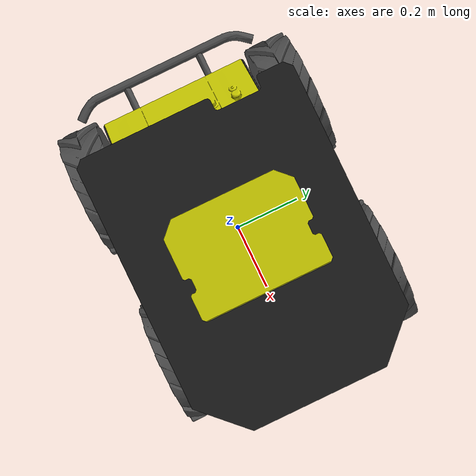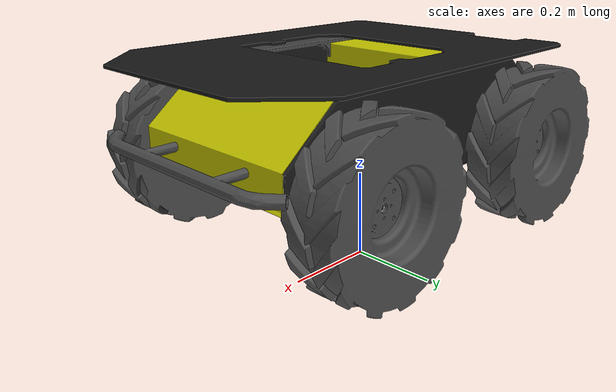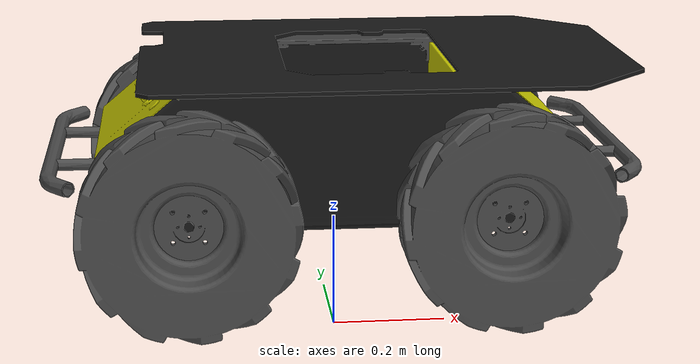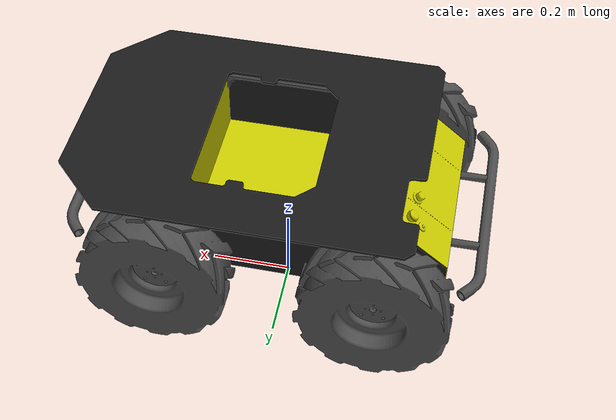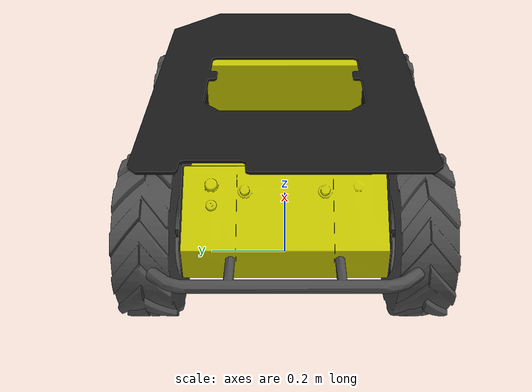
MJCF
<mujoco model="husky_robot_lidar">
  <compiler angle="radian" meshdir="./meshes/" autolimits="true"/>
  <default>
    <joint limited="false" armature="0.01" />
    <equality solref="0.0002 1" solimp="0.99 0.99 0.0001" />
  </default>
  <asset>
    <mesh name="base_link" file="base_link.stl"/>
    <mesh name="wheel" file="wheel.stl"/>
    <mesh name="top_plate" file="top_plate.stl"/>
    <mesh name="user_rail" file="user_rail.stl"/>
    <mesh name="bumper" file="bumper.stl"/>
    <mesh name="large_top_plate" file="large_top_plate.obj"/>
  </asset>
  <worldbody>
    <body name="base_husky" pos="0 0 0.1" euler="0 0 0">
      <inertial pos="0 0 0" quat="0.5 0.5 -0.5 0.5" mass="100" diaginertia="0.04411 0.02467 0.02467"/>
      <joint type="free" name="base_husky_joint" />
      <geom pos="0 0 0.14493" type="mesh" contype="0" conaffinity="1" group="1" density="0" rgba="0.1 0.1 0.1 1" mesh="base_link"/>
      <geom pos="0 0 0.14493" type="mesh" contype="0" conaffinity="1" group="1" density="0" rgba="0.8 0.8 0 1" mesh="top_plate"/>
      <geom pos="0.272 0 0.38993" type="mesh" contype="0" conaffinity="1" group="1" density="0" rgba="0.3 0.3 0.3 1" mesh="user_rail"/>
      <geom pos="0.48 0 0.23593" type="mesh" contype="0" conaffinity="1" group="1" density="0" rgba="0.3 0.3 0.3 1" mesh="bumper"/>
      <geom pos="-0.48 0 0.23593" quat="1.32679e-06 0 0 1" type="mesh" contype="0" conaffinity="1" group="1" density="0" rgba="0.3 0.3 0.3 1" mesh="bumper"/>
      <geom pos="0.08 0 0.38993" type="mesh" contype="0" conaffinity="1" group="1" density="0" rgba="0.1 0.1 0.1 1" mesh="large_top_plate"/>
      <!-- 2D LiDAR: 72 rangefinder rays at 5-degree intervals -->
      <site name="lidar_000" pos="0 0 0.55" zaxis="1.000000 0.000000 0" size="0.001" rgba="0 0 0 0" group="4"/>
      <site name="lidar_001" pos="0 0 0.55" zaxis="0.996195 0.087156 0" size="0.001" rgba="0 0 0 0" group="4"/>
      <site name="lidar_002" pos="0 0 0.55" zaxis="0.984808 0.173648 0" size="0.001" rgba="0 0 0 0" group="4"/>
      <site name="lidar_003" pos="0 0 0.55" zaxis="0.965926 0.258819 0" size="0.001" rgba="0 0 0 0" group="4"/>
      <site name="lidar_004" pos="0 0 0.55" zaxis="0.939693 0.342020 0" size="0.001" rgba="0 0 0 0" group="4"/>
      <site name="lidar_005" pos="0 0 0.55" zaxis="0.906308 0.422618 0" size="0.001" rgba="0 0 0 0" group="4"/>
      <site name="lidar_006" pos="0 0 0.55" zaxis="0.866025 0.500000 0" size="0.001" rgba="0 0 0 0" group="4"/>
      <site name="lidar_007" pos="0 0 0.55" zaxis="0.819152 0.573576 0" size="0.001" rgba="0 0 0 0" group="4"/>
      <site name="lidar_008" pos="0 0 0.55" zaxis="0.766044 0.642788 0" size="0.001" rgba="0 0 0 0" group="4"/>
      <site name="lidar_009" pos="0 0 0.55" zaxis="0.707107 0.707107 0" size="0.001" rgba="0 0 0 0" group="4"/>
      <site name="lidar_010" pos="0 0 0.55" zaxis="0.642788 0.766044 0" size="0.001" rgba="0 0 0 0" group="4"/>
      <site name="lidar_011" pos="0 0 0.55" zaxis="0.573576 0.819152 0" size="0.001" rgba="0 0 0 0" group="4"/>
      <site name="lidar_012" pos="0 0 0.55" zaxis="0.500000 0.866025 0" size="0.001" rgba="0 0 0 0" group="4"/>
      <site name="lidar_013" pos="0 0 0.55" zaxis="0.422618 0.906308 0" size="0.001" rgba="0 0 0 0" group="4"/>
      <site name="lidar_014" pos="0 0 0.55" zaxis="0.342020 0.939693 0" size="0.001" rgba="0 0 0 0" group="4"/>
      <site name="lidar_015" pos="0 0 0.55" zaxis="0.258819 0.965926 0" size="0.001" rgba="0 0 0 0" group="4"/>
      <site name="lidar_016" pos="0 0 0.55" zaxis="0.173648 0.984808 0" size="0.001" rgba="0 0 0 0" group="4"/>
      <site name="lidar_017" pos="0 0 0.55" zaxis="0.087156 0.996195 0" size="0.001" rgba="0 0 0 0" group="4"/>
      <site name="lidar_018" pos="0 0 0.55" zaxis="0.000000 1.000000 0" size="0.001" rgba="0 0 0 0" group="4"/>
      <site name="lidar_019" pos="0 0 0.55" zaxis="-0.087156 0.996195 0" size="0.001" rgba="0 0 0 0" group="4"/>
      <site name="lidar_020" pos="0 0 0.55" zaxis="-0.173648 0.984808 0" size="0.001" rgba="0 0 0 0" group="4"/>
      <site name="lidar_021" pos="0 0 0.55" zaxis="-0.258819 0.965926 0" size="0.001" rgba="0 0 0 0" group="4"/>
      <site name="lidar_022" pos="0 0 0.55" zaxis="-0.342020 0.939693 0" size="0.001" rgba="0 0 0 0" group="4"/>
      <site name="lidar_023" pos="0 0 0.55" zaxis="-0.422618 0.906308 0" size="0.001" rgba="0 0 0 0" group="4"/>
      <site name="lidar_024" pos="0 0 0.55" zaxis="-0.500000 0.866025 0" size="0.001" rgba="0 0 0 0" group="4"/>
      <site name="lidar_025" pos="0 0 0.55" zaxis="-0.573576 0.819152 0" size="0.001" rgba="0 0 0 0" group="4"/>
      <site name="lidar_026" pos="0 0 0.55" zaxis="-0.642788 0.766044 0" size="0.001" rgba="0 0 0 0" group="4"/>
      <site name="lidar_027" pos="0 0 0.55" zaxis="-0.707107 0.707107 0" size="0.001" rgba="0 0 0 0" group="4"/>
      <site name="lidar_028" pos="0 0 0.55" zaxis="-0.766044 0.642788 0" size="0.001" rgba="0 0 0 0" group="4"/>
      <site name="lidar_029" pos="0 0 0.55" zaxis="-0.819152 0.573576 0" size="0.001" rgba="0 0 0 0" group="4"/>
      <site name="lidar_030" pos="0 0 0.55" zaxis="-0.866025 0.500000 0" size="0.001" rgba="0 0 0 0" group="4"/>
      <site name="lidar_031" pos="0 0 0.55" zaxis="-0.906308 0.422618 0" size="0.001" rgba="0 0 0 0" group="4"/>
      <site name="lidar_032" pos="0 0 0.55" zaxis="-0.939693 0.342020 0" size="0.001" rgba="0 0 0 0" group="4"/>
      <site name="lidar_033" pos="0 0 0.55" zaxis="-0.965926 0.258819 0" size="0.001" rgba="0 0 0 0" group="4"/>
      <site name="lidar_034" pos="0 0 0.55" zaxis="-0.984808 0.173648 0" size="0.001" rgba="0 0 0 0" group="4"/>
      <site name="lidar_035" pos="0 0 0.55" zaxis="-0.996195 0.087156 0" size="0.001" rgba="0 0 0 0" group="4"/>
      <site name="lidar_036" pos="0 0 0.55" zaxis="-1.000000 0.000000 0" size="0.001" rgba="0 0 0 0" group="4"/>
      <site name="lidar_037" pos="0 0 0.55" zaxis="-0.996195 -0.087156 0" size="0.001" rgba="0 0 0 0" group="4"/>
      <site name="lidar_038" pos="0 0 0.55" zaxis="-0.984808 -0.173648 0" size="0.001" rgba="0 0 0 0" group="4"/>
      <site name="lidar_039" pos="0 0 0.55" zaxis="-0.965926 -0.258819 0" size="0.001" rgba="0 0 0 0" group="4"/>
      <site name="lidar_040" pos="0 0 0.55" zaxis="-0.939693 -0.342020 0" size="0.001" rgba="0 0 0 0" group="4"/>
      <site name="lidar_041" pos="0 0 0.55" zaxis="-0.906308 -0.422618 0" size="0.001" rgba="0 0 0 0" group="4"/>
      <site name="lidar_042" pos="0 0 0.55" zaxis="-0.866025 -0.500000 0" size="0.001" rgba="0 0 0 0" group="4"/>
      <site name="lidar_043" pos="0 0 0.55" zaxis="-0.819152 -0.573576 0" size="0.001" rgba="0 0 0 0" group="4"/>
      <site name="lidar_044" pos="0 0 0.55" zaxis="-0.766044 -0.642788 0" size="0.001" rgba="0 0 0 0" group="4"/>
      <site name="lidar_045" pos="0 0 0.55" zaxis="-0.707107 -0.707107 0" size="0.001" rgba="0 0 0 0" group="4"/>
      <site name="lidar_046" pos="0 0 0.55" zaxis="-0.642788 -0.766044 0" size="0.001" rgba="0 0 0 0" group="4"/>
      <site name="lidar_047" pos="0 0 0.55" zaxis="-0.573576 -0.819152 0" size="0.001" rgba="0 0 0 0" group="4"/>
      <site name="lidar_048" pos="0 0 0.55" zaxis="-0.500000 -0.866025 0" size="0.001" rgba="0 0 0 0" group="4"/>
      <site name="lidar_049" pos="0 0 0.55" zaxis="-0.422618 -0.906308 0" size="0.001" rgba="0 0 0 0" group="4"/>
      <site name="lidar_050" pos="0 0 0.55" zaxis="-0.342020 -0.939693 0" size="0.001" rgba="0 0 0 0" group="4"/>
      <site name="lidar_051" pos="0 0 0.55" zaxis="-0.258819 -0.965926 0" size="0.001" rgba="0 0 0 0" group="4"/>
      <site name="lidar_052" pos="0 0 0.55" zaxis="-0.173648 -0.984808 0" size="0.001" rgba="0 0 0 0" group="4"/>
      <site name="lidar_053" pos="0 0 0.55" zaxis="-0.087156 -0.996195 0" size="0.001" rgba="0 0 0 0" group="4"/>
      <site name="lidar_054" pos="0 0 0.55" zaxis="-0.000000 -1.000000 0" size="0.001" rgba="0 0 0 0" group="4"/>
      <site name="lidar_055" pos="0 0 0.55" zaxis="0.087156 -0.996195 0" size="0.001" rgba="0 0 0 0" group="4"/>
      <site name="lidar_056" pos="0 0 0.55" zaxis="0.173648 -0.984808 0" size="0.001" rgba="0 0 0 0" group="4"/>
      <site name="lidar_057" pos="0 0 0.55" zaxis="0.258819 -0.965926 0" size="0.001" rgba="0 0 0 0" group="4"/>
      <site name="lidar_058" pos="0 0 0.55" zaxis="0.342020 -0.939693 0" size="0.001" rgba="0 0 0 0" group="4"/>
      <site name="lidar_059" pos="0 0 0.55" zaxis="0.422618 -0.906308 0" size="0.001" rgba="0 0 0 0" group="4"/>
      <site name="lidar_060" pos="0 0 0.55" zaxis="0.500000 -0.866025 0" size="0.001" rgba="0 0 0 0" group="4"/>
      <site name="lidar_061" pos="0 0 0.55" zaxis="0.573576 -0.819152 0" size="0.001" rgba="0 0 0 0" group="4"/>
      <site name="lidar_062" pos="0 0 0.55" zaxis="0.642788 -0.766044 0" size="0.001" rgba="0 0 0 0" group="4"/>
      <site name="lidar_063" pos="0 0 0.55" zaxis="0.707107 -0.707107 0" size="0.001" rgba="0 0 0 0" group="4"/>
      <site name="lidar_064" pos="0 0 0.55" zaxis="0.766044 -0.642788 0" size="0.001" rgba="0 0 0 0" group="4"/>
      <site name="lidar_065" pos="0 0 0.55" zaxis="0.819152 -0.573576 0" size="0.001" rgba="0 0 0 0" group="4"/>
      <site name="lidar_066" pos="0 0 0.55" zaxis="0.866025 -0.500000 0" size="0.001" rgba="0 0 0 0" group="4"/>
      <site name="lidar_067" pos="0 0 0.55" zaxis="0.906308 -0.422618 0" size="0.001" rgba="0 0 0 0" group="4"/>
      <site name="lidar_068" pos="0 0 0.55" zaxis="0.939693 -0.342020 0" size="0.001" rgba="0 0 0 0" group="4"/>
      <site name="lidar_069" pos="0 0 0.55" zaxis="0.965926 -0.258819 0" size="0.001" rgba="0 0 0 0" group="4"/>
      <site name="lidar_070" pos="0 0 0.55" zaxis="0.984808 -0.173648 0" size="0.001" rgba="0 0 0 0" group="4"/>
      <site name="lidar_071" pos="0 0 0.55" zaxis="0.996195 -0.087156 0" size="0.001" rgba="0 0 0 0" group="4"/>

      <!-- Wheels -->
      <body name="front_left_wheel_link" pos="0.256 0.2854 0.17775" gravcomp="0" euler="0 0 3.14">
        <inertial pos="0 0 0" quat="0.5 0.5 -0.5 0.5" mass="2.637" diaginertia="0.04411 0.02467 0.02467"/>
        <joint name="front_left_wheel" pos="0 0 0" axis="0 1 0"/>
        <geom type="mesh" contype="0" conaffinity="1" group="1" density="0" rgba="0.3 0.3 0.3 1" mesh="wheel"/>
      </body>
      <body name="front_right_wheel_link" pos="0.256 -0.2854 0.17775" gravcomp="0" euler="0 0 3.14">
        <inertial pos="0 0 0" quat="0.5 0.5 -0.5 0.5" mass="2.637" diaginertia="0.04411 0.02467 0.02467"/>
        <joint name="front_right_wheel" pos="0 0 0" axis="0 1 0"/>
        <geom type="mesh" contype="0" conaffinity="1" group="1" density="0" rgba="0.3 0.3 0.3 1" mesh="wheel"/>
      </body>
      <body name="rear_left_wheel_link" pos="-0.256 0.2854 0.17775" gravcomp="0" euler="0 0 3.14">
        <inertial pos="0 0 0" quat="0.5 0.5 -0.5 0.5" mass="2.637" diaginertia="0.04411 0.02467 0.02467"/>
        <joint name="rear_left_wheel" pos="0 0 0" axis="0 1 0"/>
        <geom type="mesh" contype="0" conaffinity="1" group="1" density="0" rgba="0.3 0.3 0.3 1" mesh="wheel"/>
      </body>
      <body name="rear_right_wheel_link" pos="-0.256 -0.2854 0.17775" gravcomp="0" euler="0 0 3.14">
        <inertial pos="0 0 0" quat="0.5 0.5 -0.5 0.5" mass="2.637" diaginertia="0.04411 0.02467 0.02467"/>
        <joint name="rear_right_wheel" pos="0 0 0" axis="0 1 0"/>
        <geom type="mesh" contype="0" conaffinity="1" group="1" density="0" rgba="0.3 0.3 0.3 1" mesh="wheel"/>
      </body>
    </body>
  </worldbody>
  <actuator>
    <velocity name="front_left_actuator" ctrllimited="true" ctrlrange="-100.0 100.0" gear="-1"
      kv="10" joint="front_left_wheel" />
    <velocity name="front_right_actuator" ctrllimited="true" ctrlrange="-100.0 100.0" gear="-1"
      kv="10" joint="front_right_wheel" />
    <velocity name="rear_left_actuator" ctrllimited="true" ctrlrange="-100.0 100.0" gear="-1"
      kv="10" joint="rear_left_wheel" />
    <velocity name="rear_right_actuator" ctrllimited="true" ctrlrange="-100.0 100.0" gear="-1"
      kv="10" joint="rear_right_wheel" />
  </actuator>
  <sensor>
    <rangefinder name="lidar_000" site="lidar_000" cutoff="10"/>
    <rangefinder name="lidar_001" site="lidar_001" cutoff="10"/>
    <rangefinder name="lidar_002" site="lidar_002" cutoff="10"/>
    <rangefinder name="lidar_003" site="lidar_003" cutoff="10"/>
    <rangefinder name="lidar_004" site="lidar_004" cutoff="10"/>
    <rangefinder name="lidar_005" site="lidar_005" cutoff="10"/>
    <rangefinder name="lidar_006" site="lidar_006" cutoff="10"/>
    <rangefinder name="lidar_007" site="lidar_007" cutoff="10"/>
    <rangefinder name="lidar_008" site="lidar_008" cutoff="10"/>
    <rangefinder name="lidar_009" site="lidar_009" cutoff="10"/>
    <rangefinder name="lidar_010" site="lidar_010" cutoff="10"/>
    <rangefinder name="lidar_011" site="lidar_011" cutoff="10"/>
    <rangefinder name="lidar_012" site="lidar_012" cutoff="10"/>
    <rangefinder name="lidar_013" site="lidar_013" cutoff="10"/>
    <rangefinder name="lidar_014" site="lidar_014" cutoff="10"/>
    <rangefinder name="lidar_015" site="lidar_015" cutoff="10"/>
    <rangefinder name="lidar_016" site="lidar_016" cutoff="10"/>
    <rangefinder name="lidar_017" site="lidar_017" cutoff="10"/>
    <rangefinder name="lidar_018" site="lidar_018" cutoff="10"/>
    <rangefinder name="lidar_019" site="lidar_019" cutoff="10"/>
    <rangefinder name="lidar_020" site="lidar_020" cutoff="10"/>
    <rangefinder name="lidar_021" site="lidar_021" cutoff="10"/>
    <rangefinder name="lidar_022" site="lidar_022" cutoff="10"/>
    <rangefinder name="lidar_023" site="lidar_023" cutoff="10"/>
    <rangefinder name="lidar_024" site="lidar_024" cutoff="10"/>
    <rangefinder name="lidar_025" site="lidar_025" cutoff="10"/>
    <rangefinder name="lidar_026" site="lidar_026" cutoff="10"/>
    <rangefinder name="lidar_027" site="lidar_027" cutoff="10"/>
    <rangefinder name="lidar_028" site="lidar_028" cutoff="10"/>
    <rangefinder name="lidar_029" site="lidar_029" cutoff="10"/>
    <rangefinder name="lidar_030" site="lidar_030" cutoff="10"/>
    <rangefinder name="lidar_031" site="lidar_031" cutoff="10"/>
    <rangefinder name="lidar_032" site="lidar_032" cutoff="10"/>
    <rangefinder name="lidar_033" site="lidar_033" cutoff="10"/>
    <rangefinder name="lidar_034" site="lidar_034" cutoff="10"/>
    <rangefinder name="lidar_035" site="lidar_035" cutoff="10"/>
    <rangefinder name="lidar_036" site="lidar_036" cutoff="10"/>
    <rangefinder name="lidar_037" site="lidar_037" cutoff="10"/>
    <rangefinder name="lidar_038" site="lidar_038" cutoff="10"/>
    <rangefinder name="lidar_039" site="lidar_039" cutoff="10"/>
    <rangefinder name="lidar_040" site="lidar_040" cutoff="10"/>
    <rangefinder name="lidar_041" site="lidar_041" cutoff="10"/>
    <rangefinder name="lidar_042" site="lidar_042" cutoff="10"/>
    <rangefinder name="lidar_043" site="lidar_043" cutoff="10"/>
    <rangefinder name="lidar_044" site="lidar_044" cutoff="10"/>
    <rangefinder name="lidar_045" site="lidar_045" cutoff="10"/>
    <rangefinder name="lidar_046" site="lidar_046" cutoff="10"/>
    <rangefinder name="lidar_047" site="lidar_047" cutoff="10"/>
    <rangefinder name="lidar_048" site="lidar_048" cutoff="10"/>
    <rangefinder name="lidar_049" site="lidar_049" cutoff="10"/>
    <rangefinder name="lidar_050" site="lidar_050" cutoff="10"/>
    <rangefinder name="lidar_051" site="lidar_051" cutoff="10"/>
    <rangefinder name="lidar_052" site="lidar_052" cutoff="10"/>
    <rangefinder name="lidar_053" site="lidar_053" cutoff="10"/>
    <rangefinder name="lidar_054" site="lidar_054" cutoff="10"/>
    <rangefinder name="lidar_055" site="lidar_055" cutoff="10"/>
    <rangefinder name="lidar_056" site="lidar_056" cutoff="10"/>
    <rangefinder name="lidar_057" site="lidar_057" cutoff="10"/>
    <rangefinder name="lidar_058" site="lidar_058" cutoff="10"/>
    <rangefinder name="lidar_059" site="lidar_059" cutoff="10"/>
    <rangefinder name="lidar_060" site="lidar_060" cutoff="10"/>
    <rangefinder name="lidar_061" site="lidar_061" cutoff="10"/>
    <rangefinder name="lidar_062" site="lidar_062" cutoff="10"/>
    <rangefinder name="lidar_063" site="lidar_063" cutoff="10"/>
    <rangefinder name="lidar_064" site="lidar_064" cutoff="10"/>
    <rangefinder name="lidar_065" site="lidar_065" cutoff="10"/>
    <rangefinder name="lidar_066" site="lidar_066" cutoff="10"/>
    <rangefinder name="lidar_067" site="lidar_067" cutoff="10"/>
    <rangefinder name="lidar_068" site="lidar_068" cutoff="10"/>
    <rangefinder name="lidar_069" site="lidar_069" cutoff="10"/>
    <rangefinder name="lidar_070" site="lidar_070" cutoff="10"/>
    <rangefinder name="lidar_071" site="lidar_071" cutoff="10"/>
  </sensor>
</mujoco>
